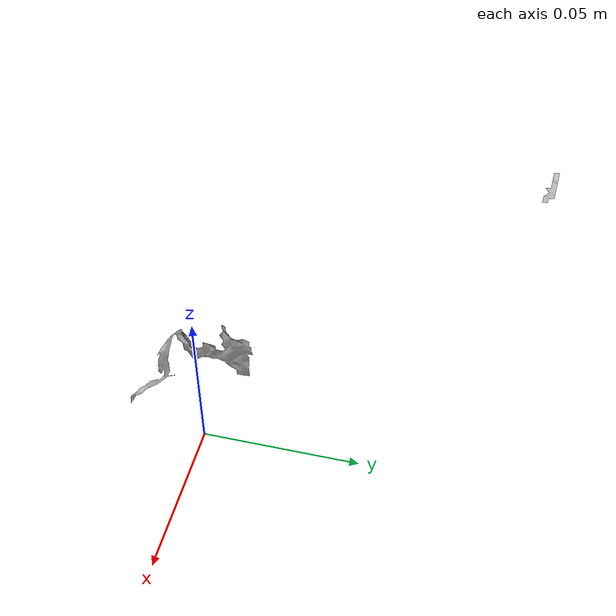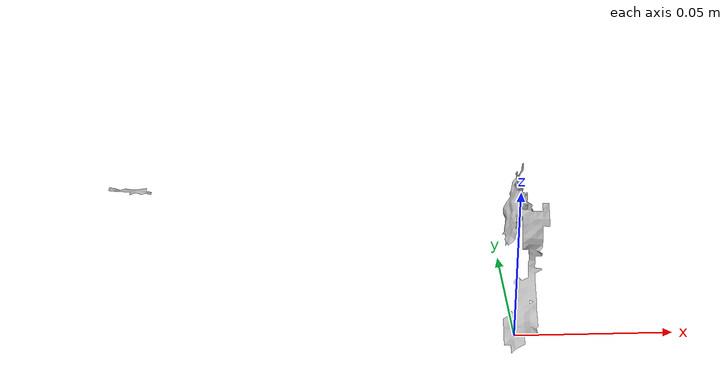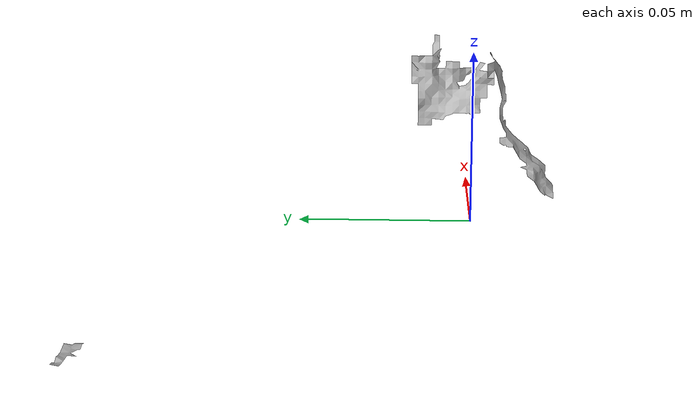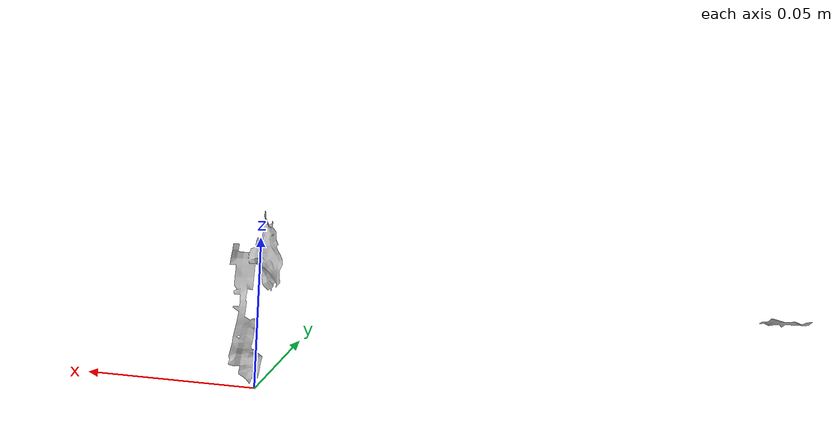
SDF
<?xml version='1.0'?>
<sdf version="1.4">
  <model name="small_clamp">
    <static>false</static>
    <link name="link">
      <inertial>
        <pose>-1.1070945568674613 3.2370770157897395 -12.94687207407937 0.14912420545023877 0.21129167682747305 -0.620799371874961</pose>
        <mass>-9.654198206426395e-09</mass>
        <inertia>
          <ixx>1.7346459918652701e-06</ixx>
          <ixy>-1.3965905855807586e-24</ixy>
          <ixz>-1.1178497375140554e-22</ixz>
          <iyy>1.7326213308860918e-06</iyy>
          <iyz>4.157149342037405e-22</iyz>
          <izz>-1.4260117570467074e-09</izz>
        </inertia>
      </inertial>
      <collision name="collision">
        <geometry>
          <mesh>
            <!-- Use a downsampled mesh for collisions -->
            <uri>model://049_small_clamp/downsampled.obj</uri>
	        </mesh>
        </geometry>
        <surface>
      </surface>
      </collision>
      <visual name="visual">
        <geometry>
          <mesh>
            <uri>model://049_small_clamp/tsdf/textured.obj</uri>
	        </mesh>
        </geometry>
        <material>
          <script>
            <uri>model://049_small_clamp/small_clamp.material</uri>
            <name>small_clamp</name>
          </script>
        </material>
      </visual>
    </link>
  </model>
</sdf>
